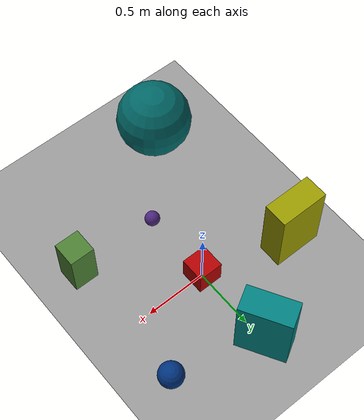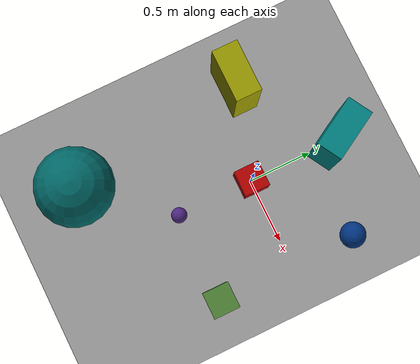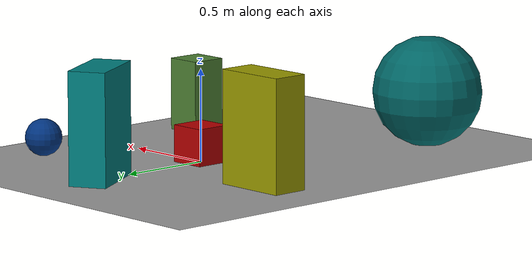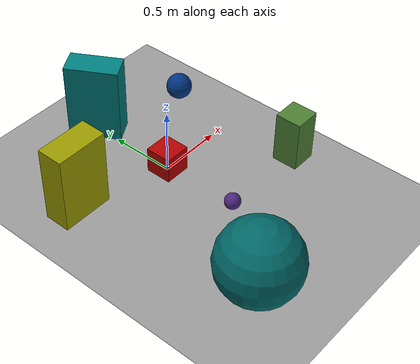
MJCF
<mujoco>

   <option gravity="0 0 -1" />

   <worldbody>
      <geom type="plane" size="10 10 0.1" rgba=".6 .6 .6 1"/>

      <body pos="0 0 0.1" euler="0 0 0">
         <joint type = "free"/>
         <geom type="box" size=".1 .1 .1" rgba="0.7 0 0 1"/>
      </body>

      <body pos="0 0 0.1" euler="0 0 0">
         <joint name="ax1" type='slide' axis='0 0 1' limited='true' range='-0.5 0.5'/>
         <joint name="ax2" type='slide' axis='0 1 0'/>
         <joint name="ax3" type='slide' axis='1 0 0' limited='true' range='-0.5 0.5'/>
         <geom type="sphere" size=".1" rgba="0 0.2 0.5 1"/>
         <light pos="0 0 3" dir="0 0 -1"/>
      </body>

      <body pos="0.7 0.5 0.1" euler="0 0 0">
         <joint type = "free"/>
         <geom type="sphere" size=".1" rgba="0 0.2 0.5 1"/>
      </body>

      <body pos="-0.7 0.2 .3" euler="0 0 90">
         <joint type = "free"/>
         <geom type="box" size=".1 .2 .3" rgba="0.6 0.6 0 1"/>
      </body>

      <body pos="-0.5 -1.2 .3" euler="0 0 0">
         <joint type = "free"/>
         <geom type="sphere" size=".3" rgba="0 .4 .4 1"/>
      </body>

      <body pos="0 .7 .3" euler="0 0 30">
         <joint type = "free"/>
         <geom type="box" size=".1 .2 .3" rgba="0 .5 .5 1"/>
      </body>

      <body pos="0 -.6 .06" euler="0 0 0">
         <joint type = "free"/>
         <geom type="sphere" size=".06" rgba=".3 .15 .5 1"/>
      </body>

      <body pos=".7 -.6 .2" euler="0 0 0">
         <joint type = "free"/>
         <geom type="box" size=".1 .1 .2" rgba=".3 .5 .2 1"/>
      </body>

   </worldbody>

       <actuator>
        <position name="ax1" joint="ax1" kp="100" />
        <position name="ax2" joint="ax2" kp="100" />
        <position name="ax3" joint="ax3" kp="100" />
    </actuator>
</mujoco>
